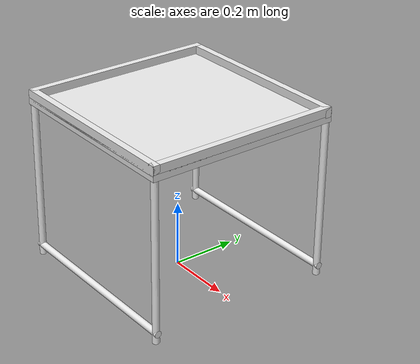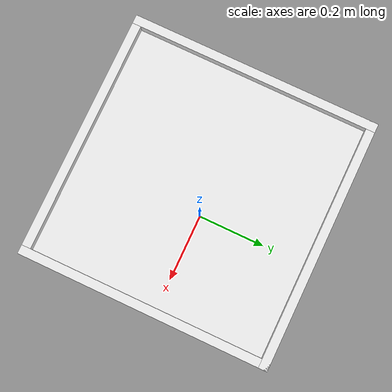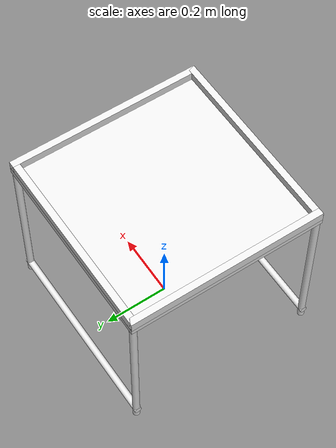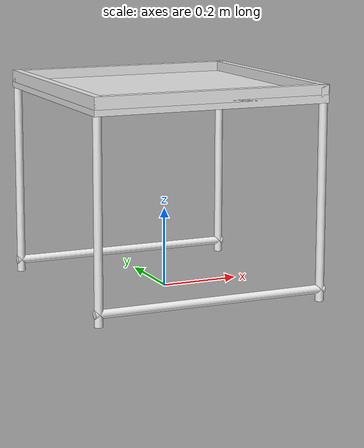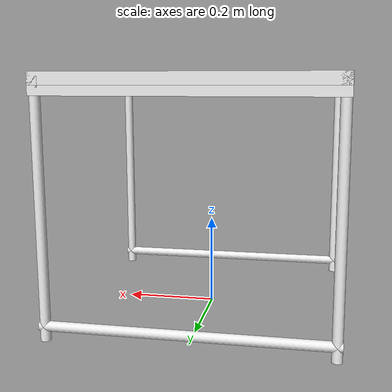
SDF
<?xml version="1.0"?>
<sdf version="1.9">
  <model name="robosub_resupply_table">
    <static>true</static>
    <plugin filename="gz-sim-label-system" name="gz::sim::systems::Label">
      <label>18</label>
    </plugin>
    <link name="top">
      <pose>0 0 0.5 0 0 0</pose>
      <inertial>
        <pose>0 0 0 0 0 0</pose>
        <mass>2</mass>
        <inertia>
          <ixx>0.0600667</ixx><ixy>0</ixy><ixz>0</ixz>
          <iyy>0.0600667</iyy><iyz>0</iyz>
          <izz>0.12</izz>
        </inertia>
      </inertial>
      <visual name="top_visual">
        <pose>0 0 0 0 0 0</pose>
        <geometry><box><size>0.6 0.6 0.02</size></box></geometry>
        <material>
          <ambient>0.92 0.92 0.92 1</ambient>
          <diffuse>0.92 0.92 0.92 1</diffuse>
          <specular>0.55 0.55 0.55 1</specular>
          <emissive>0.258 0.258 0.258 1</emissive>
          <pbr>
            <metal>
              <albedo_map>model://robosub_textures/albedo_pvc.png</albedo_map>
              <metalness>0.0</metalness>
              <roughness_map>model://robosub_textures/rough_pvc.png</roughness_map>
              <normal_map>model://robosub_textures/norm_pvc.png</normal_map>
            </metal>
          </pbr>
        </material>
      </visual>
      <collision name="top_collision">
        <pose>0 0 0 0 0 0</pose>
        <geometry><box><size>0.6 0.6 0.02</size></box></geometry>
      </collision>
    </link>
    <link name="rim_xp">
      <pose>0.2895 0 0.52 0 0 0</pose>
      <inertial>
        <pose>0 0 0 0 0 0</pose>
        <mass>0.2</mass>
        <inertia>
          <ixx>0.006015</ixx><ixy>0</ixy><ixz>0</ixz>
          <iyy>2.235e-05</iyy><iyz>0</iyz>
          <izz>0.00600735</izz>
        </inertia>
      </inertial>
      <visual name="rim_xp_visual">
        <pose>0 0 0 0 0 0</pose>
        <geometry><box><size>0.021 0.6 0.03</size></box></geometry>
        <material>
          <ambient>0.92 0.92 0.92 1</ambient>
          <diffuse>0.92 0.92 0.92 1</diffuse>
          <specular>0.55 0.55 0.55 1</specular>
          <emissive>0.258 0.258 0.258 1</emissive>
          <pbr>
            <metal>
              <albedo_map>model://robosub_textures/albedo_pvc.png</albedo_map>
              <metalness>0.0</metalness>
              <roughness_map>model://robosub_textures/rough_pvc.png</roughness_map>
              <normal_map>model://robosub_textures/norm_pvc.png</normal_map>
            </metal>
          </pbr>
        </material>
      </visual>
      <collision name="rim_xp_collision">
        <pose>0 0 0 0 0 0</pose>
        <geometry><box><size>0.021 0.6 0.03</size></box></geometry>
      </collision>
    </link>
    <link name="rim_xn">
      <pose>-0.2895 0 0.52 0 0 0</pose>
      <inertial>
        <pose>0 0 0 0 0 0</pose>
        <mass>0.2</mass>
        <inertia>
          <ixx>0.006015</ixx><ixy>0</ixy><ixz>0</ixz>
          <iyy>2.235e-05</iyy><iyz>0</iyz>
          <izz>0.00600735</izz>
        </inertia>
      </inertial>
      <visual name="rim_xn_visual">
        <pose>0 0 0 0 0 0</pose>
        <geometry><box><size>0.021 0.6 0.03</size></box></geometry>
        <material>
          <ambient>0.92 0.92 0.92 1</ambient>
          <diffuse>0.92 0.92 0.92 1</diffuse>
          <specular>0.55 0.55 0.55 1</specular>
          <emissive>0.258 0.258 0.258 1</emissive>
          <pbr>
            <metal>
              <albedo_map>model://robosub_textures/albedo_pvc.png</albedo_map>
              <metalness>0.0</metalness>
              <roughness_map>model://robosub_textures/rough_pvc.png</roughness_map>
              <normal_map>model://robosub_textures/norm_pvc.png</normal_map>
            </metal>
          </pbr>
        </material>
      </visual>
      <collision name="rim_xn_collision">
        <pose>0 0 0 0 0 0</pose>
        <geometry><box><size>0.021 0.6 0.03</size></box></geometry>
      </collision>
    </link>
    <link name="rim_yp">
      <pose>0 0.2895 0.52 0 0 0</pose>
      <inertial>
        <pose>0 0 0 0 0 0</pose>
        <mass>0.2</mass>
        <inertia>
          <ixx>2.235e-05</ixx><ixy>0</ixy><ixz>0</ixz>
          <iyy>0.006015</iyy><iyz>0</iyz>
          <izz>0.00600735</izz>
        </inertia>
      </inertial>
      <visual name="rim_yp_visual">
        <pose>0 0 0 0 0 0</pose>
        <geometry><box><size>0.6 0.021 0.03</size></box></geometry>
        <material>
          <ambient>0.92 0.92 0.92 1</ambient>
          <diffuse>0.92 0.92 0.92 1</diffuse>
          <specular>0.55 0.55 0.55 1</specular>
          <emissive>0.258 0.258 0.258 1</emissive>
          <pbr>
            <metal>
              <albedo_map>model://robosub_textures/albedo_pvc.png</albedo_map>
              <metalness>0.0</metalness>
              <roughness_map>model://robosub_textures/rough_pvc.png</roughness_map>
              <normal_map>model://robosub_textures/norm_pvc.png</normal_map>
            </metal>
          </pbr>
        </material>
      </visual>
      <collision name="rim_yp_collision">
        <pose>0 0 0 0 0 0</pose>
        <geometry><box><size>0.6 0.021 0.03</size></box></geometry>
      </collision>
    </link>
    <link name="rim_yn">
      <pose>0 -0.2895 0.52 0 0 0</pose>
      <inertial>
        <pose>0 0 0 0 0 0</pose>
        <mass>0.2</mass>
        <inertia>
          <ixx>2.235e-05</ixx><ixy>0</ixy><ixz>0</ixz>
          <iyy>0.006015</iyy><iyz>0</iyz>
          <izz>0.00600735</izz>
        </inertia>
      </inertial>
      <visual name="rim_yn_visual">
        <pose>0 0 0 0 0 0</pose>
        <geometry><box><size>0.6 0.021 0.03</size></box></geometry>
        <material>
          <ambient>0.92 0.92 0.92 1</ambient>
          <diffuse>0.92 0.92 0.92 1</diffuse>
          <specular>0.55 0.55 0.55 1</specular>
          <emissive>0.258 0.258 0.258 1</emissive>
          <pbr>
            <metal>
              <albedo_map>model://robosub_textures/albedo_pvc.png</albedo_map>
              <metalness>0.0</metalness>
              <roughness_map>model://robosub_textures/rough_pvc.png</roughness_map>
              <normal_map>model://robosub_textures/norm_pvc.png</normal_map>
            </metal>
          </pbr>
        </material>
      </visual>
      <collision name="rim_yn_collision">
        <pose>0 0 0 0 0 0</pose>
        <geometry><box><size>0.6 0.021 0.03</size></box></geometry>
      </collision>
    </link>
    <link name="leg_0">
      <pose>0.2895 0.2895 0.25 0 0 0</pose>
      <inertial>
        <pose>0 0 0 0 0 0</pose>
        <mass>0.5</mass>
        <inertia>
          <ixx>0.0104304</ixx><ixy>0</ixy><ixz>0</ixz>
          <iyy>0.0104304</iyy><iyz>0</iyz>
          <izz>2.75625e-05</izz>
        </inertia>
      </inertial>
      <visual name="leg_0_visual">
        <pose>0 0 0 0 0 0</pose>
        <geometry><cylinder><radius>0.0105</radius><length>0.5</length></cylinder></geometry>
        <material>
          <ambient>0.92 0.92 0.92 1</ambient>
          <diffuse>0.92 0.92 0.92 1</diffuse>
          <specular>0.55 0.55 0.55 1</specular>
          <emissive>0.258 0.258 0.258 1</emissive>
          <pbr>
            <metal>
              <albedo_map>model://robosub_textures/albedo_pvc.png</albedo_map>
              <metalness>0.0</metalness>
              <roughness_map>model://robosub_textures/rough_pvc.png</roughness_map>
              <normal_map>model://robosub_textures/norm_pvc.png</normal_map>
            </metal>
          </pbr>
        </material>
      </visual>
    </link>
    <link name="leg_1">
      <pose>0.2895 -0.2895 0.25 0 0 0</pose>
      <inertial>
        <pose>0 0 0 0 0 0</pose>
        <mass>0.5</mass>
        <inertia>
          <ixx>0.0104304</ixx><ixy>0</ixy><ixz>0</ixz>
          <iyy>0.0104304</iyy><iyz>0</iyz>
          <izz>2.75625e-05</izz>
        </inertia>
      </inertial>
      <visual name="leg_1_visual">
        <pose>0 0 0 0 0 0</pose>
        <geometry><cylinder><radius>0.0105</radius><length>0.5</length></cylinder></geometry>
        <material>
          <ambient>0.92 0.92 0.92 1</ambient>
          <diffuse>0.92 0.92 0.92 1</diffuse>
          <specular>0.55 0.55 0.55 1</specular>
          <emissive>0.258 0.258 0.258 1</emissive>
          <pbr>
            <metal>
              <albedo_map>model://robosub_textures/albedo_pvc.png</albedo_map>
              <metalness>0.0</metalness>
              <roughness_map>model://robosub_textures/rough_pvc.png</roughness_map>
              <normal_map>model://robosub_textures/norm_pvc.png</normal_map>
            </metal>
          </pbr>
        </material>
      </visual>
    </link>
    <link name="leg_2">
      <pose>-0.2895 0.2895 0.25 0 0 0</pose>
      <inertial>
        <pose>0 0 0 0 0 0</pose>
        <mass>0.5</mass>
        <inertia>
          <ixx>0.0104304</ixx><ixy>0</ixy><ixz>0</ixz>
          <iyy>0.0104304</iyy><iyz>0</iyz>
          <izz>2.75625e-05</izz>
        </inertia>
      </inertial>
      <visual name="leg_2_visual">
        <pose>0 0 0 0 0 0</pose>
        <geometry><cylinder><radius>0.0105</radius><length>0.5</length></cylinder></geometry>
        <material>
          <ambient>0.92 0.92 0.92 1</ambient>
          <diffuse>0.92 0.92 0.92 1</diffuse>
          <specular>0.55 0.55 0.55 1</specular>
          <emissive>0.258 0.258 0.258 1</emissive>
          <pbr>
            <metal>
              <albedo_map>model://robosub_textures/albedo_pvc.png</albedo_map>
              <metalness>0.0</metalness>
              <roughness_map>model://robosub_textures/rough_pvc.png</roughness_map>
              <normal_map>model://robosub_textures/norm_pvc.png</normal_map>
            </metal>
          </pbr>
        </material>
      </visual>
    </link>
    <link name="leg_3">
      <pose>-0.2895 -0.2895 0.25 0 0 0</pose>
      <inertial>
        <pose>0 0 0 0 0 0</pose>
        <mass>0.5</mass>
        <inertia>
          <ixx>0.0104304</ixx><ixy>0</ixy><ixz>0</ixz>
          <iyy>0.0104304</iyy><iyz>0</iyz>
          <izz>2.75625e-05</izz>
        </inertia>
      </inertial>
      <visual name="leg_3_visual">
        <pose>0 0 0 0 0 0</pose>
        <geometry><cylinder><radius>0.0105</radius><length>0.5</length></cylinder></geometry>
        <material>
          <ambient>0.92 0.92 0.92 1</ambient>
          <diffuse>0.92 0.92 0.92 1</diffuse>
          <specular>0.55 0.55 0.55 1</specular>
          <emissive>0.258 0.258 0.258 1</emissive>
          <pbr>
            <metal>
              <albedo_map>model://robosub_textures/albedo_pvc.png</albedo_map>
              <metalness>0.0</metalness>
              <roughness_map>model://robosub_textures/rough_pvc.png</roughness_map>
              <normal_map>model://robosub_textures/norm_pvc.png</normal_map>
            </metal>
          </pbr>
        </material>
      </visual>
    </link>
    <link name="foot_yp">
      <pose>0 0.2895 0.03 0 1.5708 0</pose>
      <inertial>
        <pose>0 0 0 0 0 0</pose>
        <mass>0.4</mass>
        <inertia>
          <ixx>0.012011</ixx><ixy>0</ixy><ixz>0</ixz>
          <iyy>0.012011</iyy><iyz>0</iyz>
          <izz>2.205e-05</izz>
        </inertia>
      </inertial>
      <visual name="foot_yp_visual">
        <pose>0 0 0 0 0 0</pose>
        <geometry><cylinder><radius>0.0105</radius><length>0.6</length></cylinder></geometry>
        <material>
          <ambient>0.92 0.92 0.92 1</ambient>
          <diffuse>0.92 0.92 0.92 1</diffuse>
          <specular>0.55 0.55 0.55 1</specular>
          <emissive>0.258 0.258 0.258 1</emissive>
          <pbr>
            <metal>
              <albedo_map>model://robosub_textures/albedo_pvc.png</albedo_map>
              <metalness>0.0</metalness>
              <roughness_map>model://robosub_textures/rough_pvc.png</roughness_map>
              <normal_map>model://robosub_textures/norm_pvc.png</normal_map>
            </metal>
          </pbr>
        </material>
      </visual>
    </link>
    <link name="foot_yn">
      <pose>0 -0.2895 0.03 0 1.5708 0</pose>
      <inertial>
        <pose>0 0 0 0 0 0</pose>
        <mass>0.4</mass>
        <inertia>
          <ixx>0.012011</ixx><ixy>0</ixy><ixz>0</ixz>
          <iyy>0.012011</iyy><iyz>0</iyz>
          <izz>2.205e-05</izz>
        </inertia>
      </inertial>
      <visual name="foot_yn_visual">
        <pose>0 0 0 0 0 0</pose>
        <geometry><cylinder><radius>0.0105</radius><length>0.6</length></cylinder></geometry>
        <material>
          <ambient>0.92 0.92 0.92 1</ambient>
          <diffuse>0.92 0.92 0.92 1</diffuse>
          <specular>0.55 0.55 0.55 1</specular>
          <emissive>0.258 0.258 0.258 1</emissive>
          <pbr>
            <metal>
              <albedo_map>model://robosub_textures/albedo_pvc.png</albedo_map>
              <metalness>0.0</metalness>
              <roughness_map>model://robosub_textures/rough_pvc.png</roughness_map>
              <normal_map>model://robosub_textures/norm_pvc.png</normal_map>
            </metal>
          </pbr>
        </material>
      </visual>
    </link>
  </model>
</sdf>
